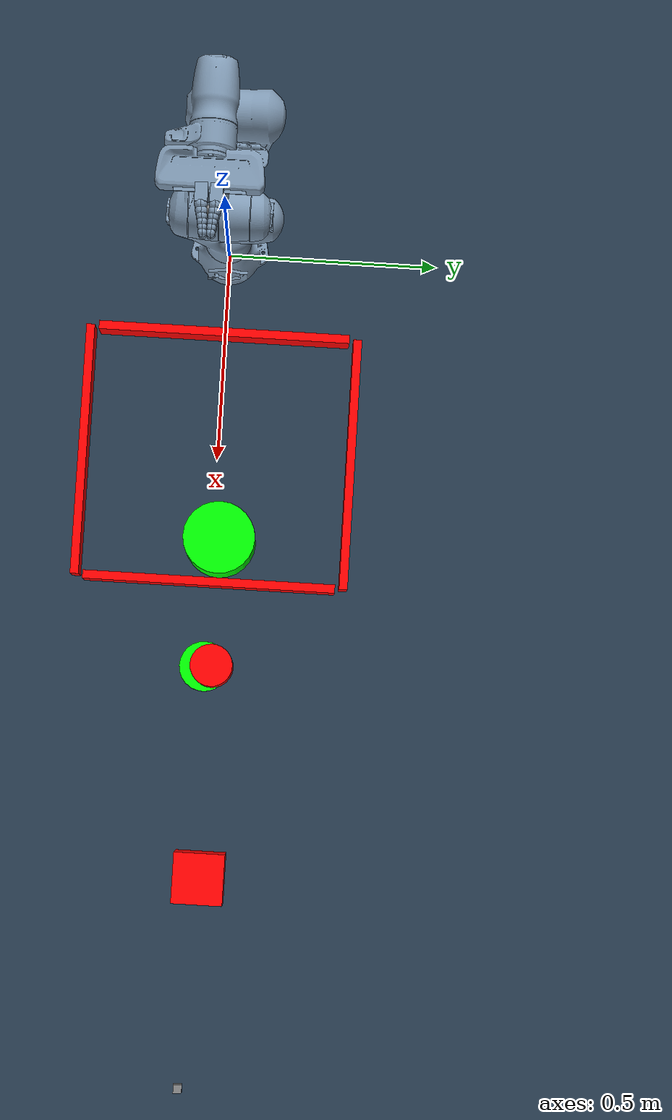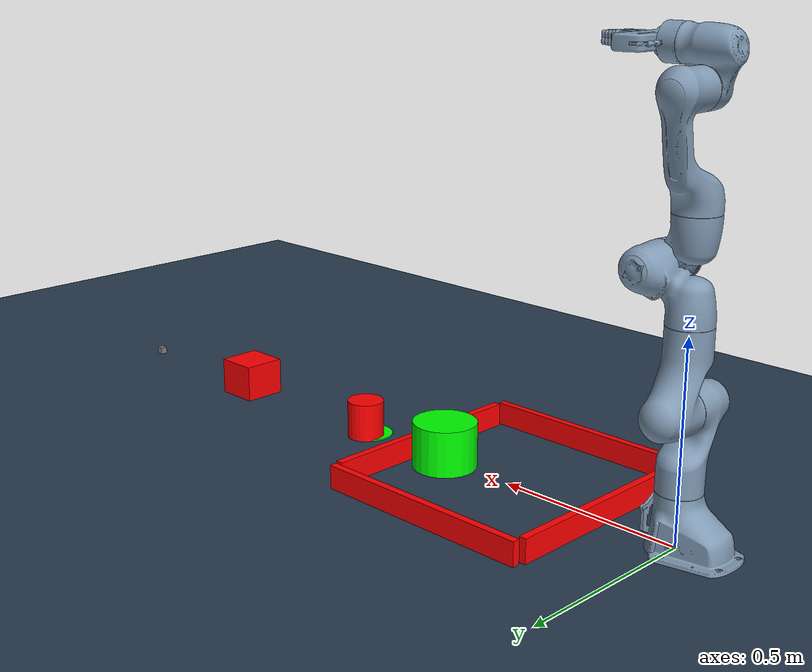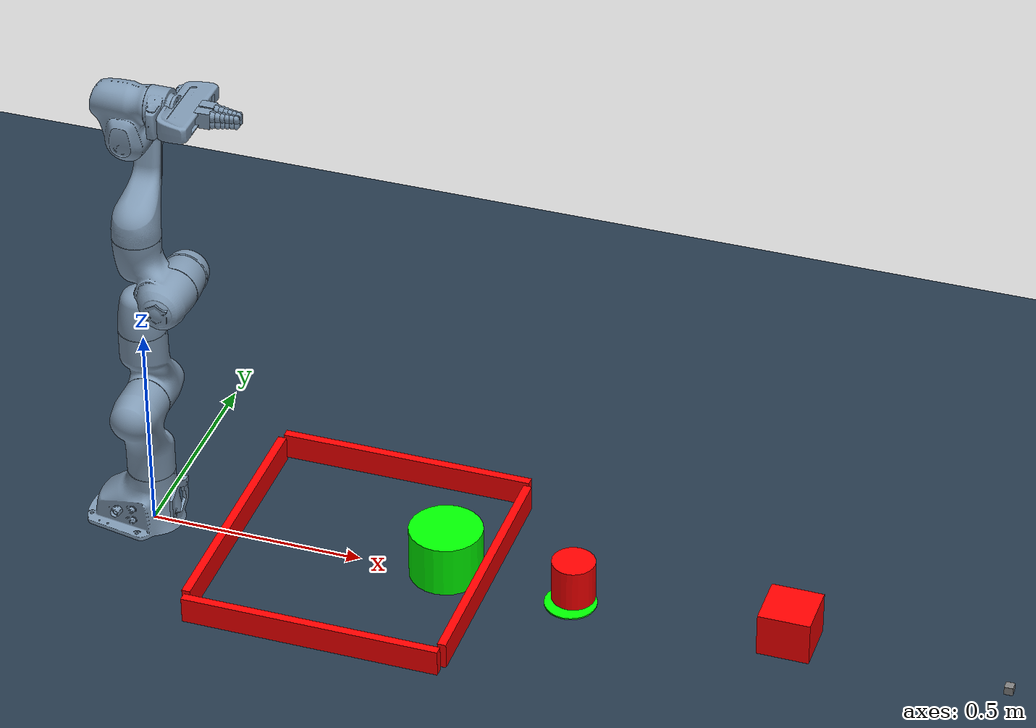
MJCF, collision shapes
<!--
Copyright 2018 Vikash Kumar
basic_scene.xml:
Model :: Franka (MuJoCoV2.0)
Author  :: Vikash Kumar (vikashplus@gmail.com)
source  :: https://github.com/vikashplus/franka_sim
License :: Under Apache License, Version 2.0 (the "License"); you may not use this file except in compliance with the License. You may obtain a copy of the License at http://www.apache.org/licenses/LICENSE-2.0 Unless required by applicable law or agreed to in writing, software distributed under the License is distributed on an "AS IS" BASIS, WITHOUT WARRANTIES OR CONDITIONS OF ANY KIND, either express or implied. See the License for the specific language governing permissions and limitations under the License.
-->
<mujoco model="cylinder pushing into clutter - franka_panda">

    <include file="assets/basic_scene.xml"/>
    <include file="assets/assets.xml"/>
    <include file="assets/gripper_assets.xml"/>
    <compiler meshdir=""/>

    <worldbody>
        <!-- Include the franka_panda robot arm model -->
        <include file="assets/chain0.xml"/>
        <body pos="0.7 0.02 0.041" name="goal">
            <joint type="free" />
            <geom type = "cylinder" pos = "0 0 0" size = "0.085 0.08" mass="0.74" rgba = "0 1 0 1" solimp="0.4 0.99 0.01 0.5 2" solref = "0.1 0.8" condim="4" margin = "0.001"/>
        </body>

        <body pos="1.5 0.02 0.041" name="obstacle_1">
            <joint type="free" />
            <geom type = "box" pos = "0 0 0" size = "0.06 0.06 0.06" mass="0.8" rgba = "1 0 0 1" solimp="0.4 0.99 0.01 0.5 2" solref = "0.1 0.8" condim="4" margin = "0.001"/>
        </body>

        <body pos="1 0.02 0.041" name="obstacle_2">
            <joint type="free" />
            <geom type = "cylinder" pos = "0 0 0" size = "0.05 0.06" mass="1" rgba = "1 0 0 1" solimp="0.4 0.99 0.01 0.5 2" solref = "0.1 0.8" condim="4" margin = "0.001"/>
        </body>

        <body pos="1.5 0.02 0.041" name="obstacle_3">
            <joint type="free" />
            <geom type = "box" pos = "0 0 0" size = "0.04 0.04 0.04" mass="0.9" rgba = "1 0 0 1" solimp="0.4 0.99 0.01 0.5 2" solref = "0.1 0.8" condim="4" margin = "0.001"/>
        </body>

        <body pos="0.2 0 0" name="northWall">
            <joint type="free" />
            <geom type = "box" pos = "0 0 0" size = "0.01 0.3 0.06" mass="100" rgba = "1 0 0 1" solimp="0.4 0.99 0.01 0.5 2" solref = "0.1 0.8" condim="4" margin = "0.001"/>
        </body>

        <body pos="0.8 0 0" name="southWall">
            <joint type="free" />
            <geom type = "box" pos = "0 0 0" size = "0.01 0.3 0.06" mass="100" rgba = "1 0 0 1" solimp="0.4 0.99 0.01 0.5 2" solref = "0.1 0.8" condim="4" margin = "0.001"/>
        </body>

        <body pos="0.5 0.32 0" name="eastWall">
            <joint type="free" />
            <geom type = "box" pos = "0 0 0" size = "0.3 0.01 0.06" mass="100" rgba = "1 0 0 1" solimp="0.4 0.99 0.01 0.5 2" solref = "0.1 0.8" condim="4" margin = "0.001"/>
        </body>

        <body pos="0.5 -0.32 0" name="westWall">
            <joint type="free" />
            <geom type = "box" pos = "0 0 0" size = "0.3 0.01 0.06" mass="100" rgba = "1 0 0 1" solimp="0.4 0.99 0.01 0.5 2" solref = "0.1 0.8" condim="4" margin = "0.001"/>
        </body>

        <body pos="1 0 0" name="display_goal">
            <joint type="free" />
            <geom type = "box" pos = "1 0 0.01" size = ".01 .01 .01" mass="1" margin = "0.001"/>
            <site type="cylinder" pos="0 0 -0.019" size="0.06 0.02" rgba="0 1 0 1"/>
        </body>

    </worldbody>

    <size njmax="500" nconmax="500"/>

    <include file='assets/actuator0.xml'/>
</mujoco>

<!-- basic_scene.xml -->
<mujocoinclude>

    <asset>
        <texture name="texplane" type="2d" builtin="checker" rgb1=".2 .3 .4" rgb2=".1 0.15 0.2"
                width="512" height="512"/>
        <material name="MatGnd" reflectance="0.5" texture="texplane" texrepeat="1 1" texuniform="true"/>
    </asset>

    <worldbody>
        <light directional="false" diffuse=".8 .8 .8" specular="0.3 0.3 0.3" pos="1  1 3" dir="-1 -1 -3"/>
        <light directional="false" diffuse=".8 .8 .8" specular="0.3 0.3 0.3" pos="1 -1 3" dir="-1 1 -3"/>
        <light directional="false" diffuse=".8 .8 .8" specular="0.3 0.3 0.3" pos="-1 0 3" dir="1 0 -3" />
        <geom name="ground" pos="0 0 0" size="5 5 10" material="MatGnd" type="plane" contype="1" conaffinity="7"/>
    </worldbody>
</mujocoinclude>

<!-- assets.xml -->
<mujocoinclude>

    <compiler angle="radian"/>
    <option timestep="0.002"/>
    <size nuser_actuator="5"/>

    <asset>
        <mesh name="link0_col" file="meshes/collision/link0.stl"/>
        <mesh name="link1_col" file="meshes/collision/link1.stl"/>
        <mesh name="link2_col" file="meshes/collision/link2.stl"/>
        <mesh name="link3_col" file="meshes/collision/link3.stl"/>
        <mesh name="link4_col" file="meshes/collision/link4.stl"/>
        <mesh name="link5_col" file="meshes/collision/link5.stl"/>
        <mesh name="link6_col" file="meshes/collision/link6.stl"/>
        <mesh name="link7_col" file="meshes/collision/link7.stl"/>
        <mesh name="hand_col"  file="meshes/collision/hand.stl"/>
        <mesh name="link0_viz" file="meshes/visual/link0.stl"/>
        <mesh name="link1_viz" file="meshes/visual/link1.stl"/>
        <mesh name="link2_viz" file="meshes/visual/link2.stl"/>
        <mesh name="link3_viz" file="meshes/visual/link3.stl"/>
        <mesh name="link4_viz" file="meshes/visual/link4.stl"/>
        <mesh name="link5_viz" file="meshes/visual/link5.stl"/>
        <mesh name="link6_viz" file="meshes/visual/link6.stl"/>
        <mesh name="link7_viz" file="meshes/visual/link7.stl"/>
        <mesh name="hand_viz"  file="meshes/visual/hand.stl"/>
    </asset>

    <default>
        <default class="panda">
            <joint pos="0 0 0" axis="0 0 1" limited="true"/>
            <position forcelimited="true" ctrllimited="true" user="1002 40 2001 -0.005 0.005"/>
            <default class="panda_viz">
                <geom contype="0" conaffinity="0" group="0" type="mesh" rgba=".95 .99 .92 1" mass="0"/>
            </default>

            <default class="panda_col"> <!-- solref="0.04 0.8" solimp="0 0.8 0.001 0.5 1" condim="6" -->
                <geom contype="1" conaffinity="1" group="3" type="mesh" rgba=".5 .6 .7 1" solref="0.04 0.8" solimp="0.0 0.8 0.001 0.5 1" condim="6"/>
            </default>
            <default class="panda_arm">
                <joint damping="100"/>
            </default>
             <default class="panda_forearm">
                <joint damping="10"/>
            </default>
             <default class="panda_finger">
                <joint damping="100" armature='5'/>
                <geom friction="1 0.5 0.0001" solref="0.01 1" solimp="0.8 0.0 0.001" margin="0.001" user="0" rgba="0.5 0.6 0.7 .4" contype="1" conaffinity="0" condim="6" group="3" />
                <position user="1002 40 2001 -0.0001 0.0001"/>
            </default>
        </default>

    </default>

    <sensor>
        <jointpos name="fr_arm_jp1" joint="panda0_joint1"/>
        <jointpos name="fr_arm_jp2" joint="panda0_joint2"/>
        <jointpos name="fr_arm_jp3" joint="panda0_joint3"/>
        <jointpos name="fr_arm_jp4" joint="panda0_joint4"/>
        <jointpos name="fr_arm_jp5" joint="panda0_joint5"/>
        <jointpos name="fr_arm_jp6" joint="panda0_joint6"/>
        <jointpos name="fr_arm_jp7" joint="panda0_joint7"/>
        <jointvel name="fr_arm_jv1" joint="panda0_joint1"/>
        <jointvel name="fr_arm_jv2" joint="panda0_joint2"/>
        <jointvel name="fr_arm_jv3" joint="panda0_joint3"/>
        <jointvel name="fr_arm_jv4" joint="panda0_joint4"/>
        <jointvel name="fr_arm_jv5" joint="panda0_joint5"/>
        <jointvel name="fr_arm_jv6" joint="panda0_joint6"/>
        <jointvel name="fr_arm_jv7" joint="panda0_joint7"/>
    </sensor>

</mujocoinclude>

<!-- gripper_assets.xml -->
<mujocoinclude>

    <asset>
        <mesh name="finger_col" file="meshes/visual/finger.obj" scale='1 1 1'/>
        <mesh name="finger_viz" file="meshes/visual/finger.obj" scale='1 1 1'/>
    </asset>

    <default>
        <default class="panda_overlay">
            <joint limited="false" damping="1000" armature="1" frictionloss="10"/>
            <geom contype="0" conaffinity="0" group="2" type="mesh" rgba=".42 0.42 0.42 .5"/>
        </default>

        <default class="finger">
            <joint axis="0 1 0" type="slide" range="0 0.04"/>
        </default>

        <default class="visual">
            <geom type="mesh" contype="0" conaffinity="0" group="2"/>
        </default>
    </default>

    <asset>
        <material class="panda" name="white" rgba="1 1 1 1"/>
        <material class="panda" name="off_white" rgba="0.901961 0.921569 0.929412 1"/>
        <material class="panda" name="black" rgba="0.25 0.25 0.25 1"/>

        <mesh file="meshes/visual/finger.obj"/>

    </asset>

</mujocoinclude>

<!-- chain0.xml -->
<mujocoinclude>

<!-- Robot limits pulled from https://frankaemika.github.io/docs/control_parameters.html#constants -->

    <body name="panda0_link0" childclass="panda" >
        <geom class="panda_viz" mesh="link0_viz"/>
        <geom class="panda_col" mesh="link0_col" mass="2.91242"/>
        <body name="panda0_link1" pos="0 0 0.333">
            <joint name="panda0_joint1" range="-2.8973 2.8973" class="panda_arm"/>
            <geom class="panda_viz" mesh="link1_viz"/>
            <geom class="panda_col" mesh="link1_col" mass="2.7063"/>
            <body name="panda0_link2" pos="0 0 0" quat="0.707107 -0.707107 0 0">
                <joint name="panda0_joint2" range="-1.7628 1.7628" class="panda_arm"/>
                <geom class="panda_viz" mesh="link2_viz"/>
                <geom class="panda_col" mesh="link2_col" mass="2.73046"/>
                <body name="panda0_link3" pos="0 -0.316 0" quat="0.707107 0.707107 0 0">
                    <joint name="panda0_joint3" range="-2.8973 2.8973" class="panda_arm"/>
                    <geom class="panda_viz" mesh="link3_viz"/>
                    <geom class="panda_col" mesh="link3_col" mass="2.04104"/>
                    <body name="panda0_link4" pos="0.0825 0 0" quat="0.707107 0.707107 0 0">
						<joint name="panda0_joint4" range="-3.0718 -0.4" class="panda_arm"/>
                        <geom class="panda_viz" mesh="link4_viz"/>
                        <geom class="panda_col" mesh="link4_col" mass="2.08129"/>
                        <body name="panda0_link5" pos="-0.0825 0.384 0" quat="0.707107 -0.707107 0 0">
                            <joint name="panda0_joint5" range="-2.8973 2.8973" class="panda_forearm"/>
                            <geom class="panda_viz" mesh="link5_viz"/>
                            <geom class="panda_col" mesh="link5_col" mass="3.00049"/>
                            <body name="panda0_link6" pos="0 0 0" euler='1.57 0 1.57'>
                                <joint name="panda0_joint6" range="-1.6573 2.1127" class="panda_forearm"/>
                                <geom class="panda_viz" mesh="link6_viz"/>
                                <geom class="panda_col" mesh="link6_col" mass="1.3235"/>
                                <body name="panda0_link7" pos="0.088 0 0" euler='1.57 0 0.7854'>
                                    <joint name="panda0_joint7" range="-2.8973 2.8973" class="panda_forearm"/>
                                    <geom class="panda_viz" mesh="link7_viz"/>
                                    <geom class="panda_col" mesh="link7_col" mass="0.2"/>

                                    <!-- End Effector -->
                                    <body name="franka_gripper">
                                        <geom pos="0 0 0.107" quat="0.92388 0 0 -0.382683" class="panda_viz" mesh="hand_viz"/>
                                        <geom pos="0 0 0.107" quat="0.92388 0 0 -0.382683" class="panda_col" mesh="hand_col" mass="0.81909"/>
                                        <site name='end_effector' pos='0 0 .210' size='0.01' euler='0 0 -0.785398'/>

                                        <body name="panda0_leftfinger" pos="0 0 0.1654" quat="0.92388 0 0 -0.382683" childclass='panda_finger'>
                                            <inertial pos="-1.57863e-05 0.0118731 0.0434103" quat="0.705868 0.0310348 -0.0314925 0.706962" mass="0.0927059" diaginertia="6.57134e-05 6.09611e-05 1.09932e-05" />
                                            <joint name="panda0_finger_joint1"  axis="0 1 0" type="slide" range="0 0.04" class="panda_finger"/>
                                            <geom class="panda_viz" mesh="finger_viz"/>
                                            <geom size="0.0070" fromto=".009 .006 .0875   -.009 .009 .0875" type="capsule" />
                                            <geom size="0.0070" fromto=".009 .009 .0875   -.009 .006 .0875" type="capsule" />

                                            <geom size="0.0075" fromto=".009 .007 .0775   -.009 .010 .0775" type="capsule" />
                                            <geom size="0.0075" fromto=".009 .010 .0775   -.009 .007 .0775" type="capsule" />

                                            <geom size="0.0082" fromto=".009 .008 .0675   -.009 .011 .0675" type="capsule" />
                                            <geom size="0.0082" fromto=".009 .011 .0675   -.009 .008 .0675" type="capsule" />

                                            <geom size="0.0090" fromto=".009 .009 .0575   -.009 .012 .0575" type="capsule" />
                                            <geom size="0.0090" fromto=".009 .012 .0575   -.009 .009 .0575" type="capsule" />

                                            <geom size="0.0100" fromto=".009 .0105 .0475   -.009 .0135 .0475" type="capsule" />
                                            <geom size="0.0100" fromto=".009 .0135 .0475   -.009 .0105 .0475" type="capsule" />

                                            <geom size="0.0110" fromto=".009 .012 .035   -.009 .015 .035" type="capsule" />
                                            <geom size="0.0110" fromto=".009 .015 .035   -.009 .012 .035" type="capsule" />

                                            <geom size="0.0185 0.0120 0.0175" pos="0 0.014 0.015" type="box" euler='.03 0 0' />

                                        </body>
                                        <body name="panda0_rightfinger" pos="0 0 0.1654" quat="0.92388 0 0 -0.382683"  childclass='panda_finger'>
                                            <inertial pos="1.57863e-05 -0.0118731 0.0434103" quat="0.705868 -0.0310348 0.0314925 0.706962" mass="0.0927059" diaginertia="6.57134e-05 6.09611e-05 1.09932e-05" />
                                            <joint name="panda0_finger_joint2" axis="0 -1 0" type="slide" range="0 0.04" class="panda_finger"/>
                                            <geom quat="0 0 0 1" class="panda_viz" mesh="finger_viz"/>
                                            <geom size="0.0070" fromto=".009 -.006 .0875   -.009 -.009 .0875" type="capsule" />
                                            <geom size="0.0070" fromto=".009 -.009 .0875   -.009 -.006 .0875" type="capsule" />

                                            <geom size="0.0075" fromto=".009 -.007 .0775   -.009 -.010 .0775" type="capsule" />
                                            <geom size="0.0075" fromto=".009 -.010 .0775   -.009 -.007 .0775" type="capsule" />

                                            <geom size="0.0082" fromto=".009 -.008 .0675   -.009 -.011 .0675" type="capsule" />
                                            <geom size="0.0082" fromto=".009 -.011 .0675   -.009 -.008 .0675" type="capsule" />

                                            <geom size="0.0090" fromto=".009 -.009 .0575   -.009 -.012 .0575" type="capsule" />
                                            <geom size="0.0090" fromto=".009 -.012 .0575   -.009 -.009 .0575" type="capsule" />

                                            <geom size="0.0100" fromto=".009 -.0105 .0475   -.009 -.0135 .0475" type="capsule" />
                                            <geom size="0.0100" fromto=".009 -.0135 .0475   -.009 -.0105 .0475" type="capsule" />

                                            <geom size="0.0110" fromto=".009 -.012 .035   -.009 -.015 .035" type="capsule" />
                                            <geom size="0.0110" fromto=".009 -.015 .035   -.009 -.012 .035" type="capsule" />

                                            <geom size="0.0185 0.0120 0.0175" pos="0 -.014 0.015" type="box" euler='-.03 0 0' />
                                        </body>
                                    </body>

                                </body>
                            </body>
                        </body>
                    </body>
                </body>
            </body>
        </body>
    </body>
</mujocoinclude>

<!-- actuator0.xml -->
<mujocoinclude>

    <actuator>

		<motor joint='panda0_joint1' name='panda0_joint1' class="panda" gear="1" ctrllimited="true" forcerange="-87 87" ctrlrange="-87 87"/>
		<motor joint='panda0_joint2' name='panda0_joint2' class="panda" gear="1" ctrllimited="true" forcerange="-87 87" ctrlrange="-87 87"/>
		<motor joint='panda0_joint3' name='panda0_joint3' class="panda" gear="1" ctrllimited="true" forcerange="-87 87" ctrlrange="-87 87"/>
		<motor joint='panda0_joint4' name='panda0_joint4' class="panda" gear="1" ctrllimited="true" forcerange="-87 87" ctrlrange="-87 87"/>
		<motor joint='panda0_joint5' name='panda0_joint5' class="panda" gear="1" ctrllimited="true" forcerange="-12 12" ctrlrange="-12 12"/>
		<motor joint='panda0_joint6' name='panda0_joint6' class="panda" gear="1" ctrllimited="true" forcerange="-12 12" ctrlrange="-12 12"/>
		<motor joint='panda0_joint7' name='panda0_joint7' class="panda" gear="1" ctrllimited="true" forcerange="-12 12" ctrlrange="-12 12"/>
    </actuator>
</mujocoinclude>
